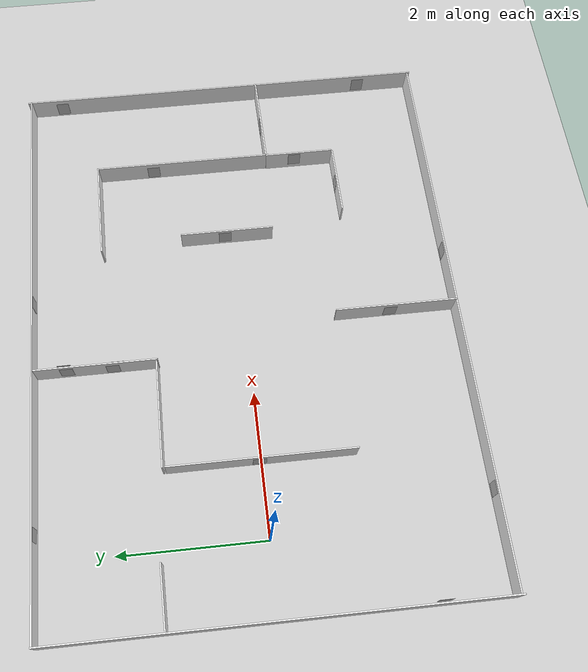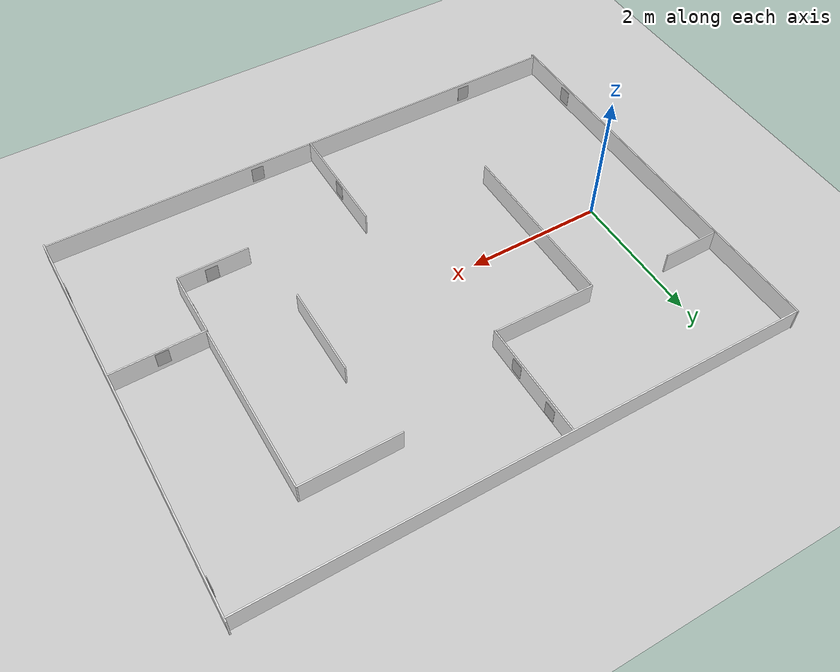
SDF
<sdf version="1.6">
 <world name="default">
  <model name="ground_plane">
   <static>1</static>
   <link name="link">
    <collision name="collision">
     <geometry><plane><normal>0 0 1</normal><size>100 100</size></plane></geometry>
     <surface><friction><ode><mu>100</mu><mu2>50</mu2></ode></friction></surface>
    </collision>
    <visual name="visual">
     <cast_shadows>0</cast_shadows>
     <geometry><plane><normal>0 0 1</normal><size>100 100</size></plane></geometry>
     <material>
      <script><uri>file://media/materials/scripts/gazebo.material</uri><name>Gazebo/Grey</name></script>
     </material>
    </visual>
   </link>
  </model>
  <model name="white_wall">
   <link name="link_0">
    <inertial>
     <mass>0.0175997</mass>
     <inertia>
      <ixx>0.00164239</ixx>
      <ixy>0</ixy>
      <ixz>0</ixz>
      <iyy>0.000179535</iyy>
      <iyz>0</iyz>
      <izz>0.00147044</izz>
     </inertia>
    </inertial>
    <visual name="visual">
     <geometry><box><size>0.02 6.00337 0.346159</size></box></geometry>
     <material>
      <lighting>1</lighting>
      <script><uri>file://media/materials/scripts/gazebo.material</uri><name>Gazebo/White</name></script>
      <ambient>1 1 1 1</ambient>
      <diffuse>1 1 1 1</diffuse>
      <specular>0.01 0.01 0.01 1</specular>
      <emissive>0 0 0 1</emissive>
      <shader type="vertex"><normal_map>__default__</normal_map></shader>
     </material>
    </visual>
    <collision name="collision">
     <geometry><box><size>0.050867 6.00337 0.346159</size></box></geometry>
     <surface>
      <friction>
       <ode><mu>1</mu><mu2>1</mu2><fdir1>0 0 0</fdir1><slip1>0</slip1><slip2>0</slip2></ode>
       <torsional>
        <coefficient>1</coefficient>
        <patch_radius>0</patch_radius>
        <surface_radius>0</surface_radius>
        <use_patch_radius>1</use_patch_radius>
        <ode><slip>0</slip></ode>
       </torsional>
      </friction>
      <bounce><restitution_coefficient>0</restitution_coefficient><threshold>1e+06</threshold></bounce>
      <contact>
       <collide_without_contact>0</collide_without_contact>
       <collide_without_contact_bitmask>1</collide_without_contact_bitmask>
       <collide_bitmask>1</collide_bitmask>
       <ode>
        <soft_cfm>0</soft_cfm>
        <soft_erp>0.2</soft_erp>
        <kp>1e+13</kp>
        <kd>1</kd>
        <max_vel>0.01</max_vel>
        <min_depth>0</min_depth>
       </ode>
       <bullet>
        <split_impulse>1</split_impulse>
        <split_impulse_penetration_threshold>-0.01</split_impulse_penetration_threshold>
        <soft_cfm>0</soft_cfm>
        <soft_erp>0.2</soft_erp>
        <kp>1e+13</kp>
        <kd>1</kd>
       </bullet>
      </contact>
     </surface>
    </collision>
   </link>
   <static>1</static>
   <pose>-1 0 0.182455 0 -0 0</pose>
  </model>
  <model name="white_wall_0">
   <link name="link_0">
    <inertial>
     <mass>0.0175997</mass>
     <inertia>
      <ixx>0.00164239</ixx>
      <ixy>0</ixy>
      <ixz>0</ixz>
      <iyy>0.000179535</iyy>
      <iyz>0</iyz>
      <izz>0.00147044</izz>
     </inertia>
    </inertial>
    <visual name="visual">
     <geometry><box><size>0.02 6.03871 0.346159</size></box></geometry>
     <material>
      <lighting>1</lighting>
      <script><uri>file://media/materials/scripts/gazebo.material</uri><name>Gazebo/White</name></script>
      <ambient>1 1 1 1</ambient>
      <diffuse>1 1 1 1</diffuse>
      <specular>0.01 0.01 0.01 1</specular>
      <emissive>0 0 0 1</emissive>
      <shader type="vertex"><normal_map>__default__</normal_map></shader>
     </material>
    </visual>
    <collision name="collision">
     <geometry><box><size>0.050867 6.03871 0.346159</size></box></geometry>
     <surface>
      <friction>
       <ode><mu>1</mu><mu2>1</mu2><fdir1>0 0 0</fdir1><slip1>0</slip1><slip2>0</slip2></ode>
       <torsional>
        <coefficient>1</coefficient>
        <patch_radius>0</patch_radius>
        <surface_radius>0</surface_radius>
        <use_patch_radius>1</use_patch_radius>
        <ode><slip>0</slip></ode>
       </torsional>
      </friction>
      <bounce><restitution_coefficient>0</restitution_coefficient><threshold>1e+06</threshold></bounce>
      <contact>
       <collide_without_contact>0</collide_without_contact>
       <collide_without_contact_bitmask>1</collide_without_contact_bitmask>
       <collide_bitmask>1</collide_bitmask>
       <ode>
        <soft_cfm>0</soft_cfm>
        <soft_erp>0.2</soft_erp>
        <kp>1e+13</kp>
        <kd>1</kd>
        <max_vel>0.01</max_vel>
        <min_depth>0</min_depth>
       </ode>
       <bullet>
        <split_impulse>1</split_impulse>
        <split_impulse_penetration_threshold>-0.01</split_impulse_penetration_threshold>
        <soft_cfm>0</soft_cfm>
        <soft_erp>0.2</soft_erp>
        <kp>1e+13</kp>
        <kd>1</kd>
       </bullet>
      </contact>
     </surface>
    </collision>
   </link>
   <static>1</static>
   <pose>7 0 0.172015 0 -0 0</pose>
  </model>
  <model name="white_wall_1">
   <link name="link_0">
    <inertial>
     <mass>0.0175997</mass>
     <inertia>
      <ixx>0.00164239</ixx>
      <ixy>0</ixy>
      <ixz>0</ixz>
      <iyy>0.000179535</iyy>
      <iyz>0</iyz>
      <izz>0.00147044</izz>
     </inertia>
    </inertial>
    <visual name="visual">
     <geometry><box><size>0.02 7.97967 0.346159</size></box></geometry>
     <material>
      <lighting>1</lighting>
      <script><uri>file://media/materials/scripts/gazebo.material</uri><name>Gazebo/White</name></script>
      <ambient>1 1 1 1</ambient>
      <diffuse>1 1 1 1</diffuse>
      <specular>0.01 0.01 0.01 1</specular>
      <emissive>0 0 0 1</emissive>
      <shader type="vertex"><normal_map>__default__</normal_map></shader>
     </material>
    </visual>
    <collision name="collision">
     <geometry><box><size>0.050867 7.97967 0.346159</size></box></geometry>
     <surface>
      <friction>
       <ode><mu>1</mu><mu2>1</mu2><fdir1>0 0 0</fdir1><slip1>0</slip1><slip2>0</slip2></ode>
       <torsional>
        <coefficient>1</coefficient>
        <patch_radius>0</patch_radius>
        <surface_radius>0</surface_radius>
        <use_patch_radius>1</use_patch_radius>
        <ode><slip>0</slip></ode>
       </torsional>
      </friction>
      <bounce><restitution_coefficient>0</restitution_coefficient><threshold>1e+06</threshold></bounce>
      <contact>
       <collide_without_contact>0</collide_without_contact>
       <collide_without_contact_bitmask>1</collide_without_contact_bitmask>
       <collide_bitmask>1</collide_bitmask>
       <ode>
        <soft_cfm>0</soft_cfm>
        <soft_erp>0.2</soft_erp>
        <kp>1e+13</kp>
        <kd>1</kd>
        <max_vel>0.01</max_vel>
        <min_depth>0</min_depth>
       </ode>
       <bullet>
        <split_impulse>1</split_impulse>
        <split_impulse_penetration_threshold>-0.01</split_impulse_penetration_threshold>
        <soft_cfm>0</soft_cfm>
        <soft_erp>0.2</soft_erp>
        <kp>1e+13</kp>
        <kd>1</kd>
       </bullet>
      </contact>
     </surface>
    </collision>
   </link>
   <static>1</static>
   <pose>2.99687 -2.9685 0.172001 0 -0 1.56756</pose>
  </model>
  <model name="white_wall_2">
   <link name="link_0">
    <inertial>
     <mass>0.0175997</mass>
     <inertia>
      <ixx>0.00164239</ixx>
      <ixy>0</ixy>
      <ixz>0</ixz>
      <iyy>0.000179535</iyy>
      <iyz>0</iyz>
      <izz>0.00147044</izz>
     </inertia>
    </inertial>
    <visual name="visual">
     <geometry><box><size>0.02 7.99042 0.346159</size></box></geometry>
     <material>
      <lighting>1</lighting>
      <script><uri>file://media/materials/scripts/gazebo.material</uri><name>Gazebo/White</name></script>
      <ambient>1 1 1 1</ambient>
      <diffuse>1 1 1 1</diffuse>
      <specular>0.01 0.01 0.01 1</specular>
      <emissive>0 0 0 1</emissive>
      <shader type="vertex"><normal_map>__default__</normal_map></shader>
     </material>
    </visual>
    <collision name="collision">
     <geometry><box><size>0.050867 7.99042 0.346159</size></box></geometry>
     <surface>
      <friction>
       <ode><mu>1</mu><mu2>1</mu2><fdir1>0 0 0</fdir1><slip1>0</slip1><slip2>0</slip2></ode>
       <torsional>
        <coefficient>1</coefficient>
        <patch_radius>0</patch_radius>
        <surface_radius>0</surface_radius>
        <use_patch_radius>1</use_patch_radius>
        <ode><slip>0</slip></ode>
       </torsional>
      </friction>
      <bounce><restitution_coefficient>0</restitution_coefficient><threshold>1e+06</threshold></bounce>
      <contact>
       <collide_without_contact>0</collide_without_contact>
       <collide_without_contact_bitmask>1</collide_without_contact_bitmask>
       <collide_bitmask>1</collide_bitmask>
       <ode>
        <soft_cfm>0</soft_cfm>
        <soft_erp>0.2</soft_erp>
        <kp>1e+13</kp>
        <kd>1</kd>
        <max_vel>0.01</max_vel>
        <min_depth>0</min_depth>
       </ode>
       <bullet>
        <split_impulse>1</split_impulse>
        <split_impulse_penetration_threshold>-0.01</split_impulse_penetration_threshold>
        <soft_cfm>0</soft_cfm>
        <soft_erp>0.2</soft_erp>
        <kp>1e+13</kp>
        <kd>1</kd>
       </bullet>
      </contact>
     </surface>
    </collision>
   </link>
   <static>1</static>
   <pose>3.0014 2.97559 0.180231 0 -0 1.56936</pose>
  </model>
  <model name="white_wall_3">
   <link name="link_0">
    <inertial>
     <mass>0.0175997</mass>
     <inertia>
      <ixx>0.00164239</ixx>
      <ixy>0</ixy>
      <ixz>0</ixz>
      <iyy>0.000179535</iyy>
      <iyz>0</iyz>
      <izz>0.00147044</izz>
     </inertia>
    </inertial>
    <visual name="visual">
     <geometry><box><size>0.02 2.54417 0.346159</size></box></geometry>
     <material>
      <lighting>1</lighting>
      <script><uri>file://media/materials/scripts/gazebo.material</uri><name>Gazebo/White</name></script>
      <ambient>1 1 1 1</ambient>
      <diffuse>1 1 1 1</diffuse>
      <specular>0.01 0.01 0.01 1</specular>
      <emissive>0 0 0 1</emissive>
      <shader type="vertex"><normal_map>__default__</normal_map></shader>
     </material>
    </visual>
    <collision name="collision">
     <geometry><box><size>0.050867 2.54417 0.346159</size></box></geometry>
     <surface>
      <friction>
       <ode><mu>1</mu><mu2>1</mu2><fdir1>0 0 0</fdir1><slip1>0</slip1><slip2>0</slip2></ode>
       <torsional>
        <coefficient>1</coefficient>
        <patch_radius>0</patch_radius>
        <surface_radius>0</surface_radius>
        <use_patch_radius>1</use_patch_radius>
        <ode><slip>0</slip></ode>
       </torsional>
      </friction>
      <bounce><restitution_coefficient>0</restitution_coefficient><threshold>1e+06</threshold></bounce>
      <contact>
       <collide_without_contact>0</collide_without_contact>
       <collide_without_contact_bitmask>1</collide_without_contact_bitmask>
       <collide_bitmask>1</collide_bitmask>
       <ode>
        <soft_cfm>0</soft_cfm>
        <soft_erp>0.2</soft_erp>
        <kp>1e+13</kp>
        <kd>1</kd>
        <max_vel>0.01</max_vel>
        <min_depth>0</min_depth>
       </ode>
       <bullet>
        <split_impulse>1</split_impulse>
        <split_impulse_penetration_threshold>-0.01</split_impulse_penetration_threshold>
        <soft_cfm>0</soft_cfm>
        <soft_erp>0.2</soft_erp>
        <kp>1e+13</kp>
        <kd>1</kd>
       </bullet>
      </contact>
     </surface>
    </collision>
   </link>
   <static>1</static>
   <pose>1.0154 -0.003535 0.168105 0 -0 0</pose>
  </model>
  <model name="white_wall_4">
   <link name="link_0">
    <inertial>
     <mass>0.0175997</mass>
     <inertia>
      <ixx>0.00164239</ixx>
      <ixy>0</ixy>
      <ixz>0</ixz>
      <iyy>0.000179535</iyy>
      <iyz>0</iyz>
      <izz>0.00147044</izz>
     </inertia>
    </inertial>
    <visual name="visual">
     <geometry><box><size>0.02 1.49109 0.346159</size></box></geometry>
     <material>
      <lighting>1</lighting>
      <script><uri>file://media/materials/scripts/gazebo.material</uri><name>Gazebo/White</name></script>
      <ambient>1 1 1 1</ambient>
      <diffuse>1 1 1 1</diffuse>
      <specular>0.01 0.01 0.01 1</specular>
      <emissive>0 0 0 1</emissive>
      <shader type="vertex"><normal_map>__default__</normal_map></shader>
     </material>
    </visual>
    <collision name="collision">
     <geometry><box><size>0.050867 1.49109 0.346159</size></box></geometry>
     <surface>
      <friction>
       <ode><mu>1</mu><mu2>1</mu2><fdir1>0 0 0</fdir1><slip1>0</slip1><slip2>0</slip2></ode>
       <torsional>
        <coefficient>1</coefficient>
        <patch_radius>0</patch_radius>
        <surface_radius>0</surface_radius>
        <use_patch_radius>1</use_patch_radius>
        <ode><slip>0</slip></ode>
       </torsional>
      </friction>
      <bounce><restitution_coefficient>0</restitution_coefficient><threshold>1e+06</threshold></bounce>
      <contact>
       <collide_without_contact>0</collide_without_contact>
       <collide_without_contact_bitmask>1</collide_without_contact_bitmask>
       <collide_bitmask>1</collide_bitmask>
       <ode>
        <soft_cfm>0</soft_cfm>
        <soft_erp>0.2</soft_erp>
        <kp>1e+13</kp>
        <kd>1</kd>
        <max_vel>0.01</max_vel>
        <min_depth>0</min_depth>
       </ode>
       <bullet>
        <split_impulse>1</split_impulse>
        <split_impulse_penetration_threshold>-0.01</split_impulse_penetration_threshold>
        <soft_cfm>0</soft_cfm>
        <soft_erp>0.2</soft_erp>
        <kp>1e+13</kp>
        <kd>1</kd>
       </bullet>
      </contact>
     </surface>
    </collision>
   </link>
   <static>1</static>
   <pose>1.75302 1.29235 0.163798 0 -0 1.56072</pose>
  </model>
  <model name="white_wall_5">
   <link name="link_0">
    <inertial>
     <mass>0.0175997</mass>
     <inertia>
      <ixx>0.00164239</ixx>
      <ixy>0</ixy>
      <ixz>0</ixz>
      <iyy>0.000179535</iyy>
      <iyz>0</iyz>
      <izz>0.00147044</izz>
     </inertia>
    </inertial>
    <visual name="visual">
     <geometry><box><size>0.02 1.71064 0.346159</size></box></geometry>
     <material>
      <lighting>1</lighting>
      <script><uri>file://media/materials/scripts/gazebo.material</uri><name>Gazebo/White</name></script>
      <ambient>1 1 1 1</ambient>
      <diffuse>1 1 1 1</diffuse>
      <specular>0.01 0.01 0.01 1</specular>
      <emissive>0 0 0 1</emissive>
      <shader type="vertex"><normal_map>__default__</normal_map></shader>
     </material>
    </visual>
    <collision name="collision">
     <geometry><box><size>0.050867 1.71064 0.346159</size></box></geometry>
     <surface>
      <friction>
       <ode><mu>1</mu><mu2>1</mu2><fdir1>0 0 0</fdir1><slip1>0</slip1><slip2>0</slip2></ode>
       <torsional>
        <coefficient>1</coefficient>
        <patch_radius>0</patch_radius>
        <surface_radius>0</surface_radius>
        <use_patch_radius>1</use_patch_radius>
        <ode><slip>0</slip></ode>
       </torsional>
      </friction>
      <bounce><restitution_coefficient>0</restitution_coefficient><threshold>1e+06</threshold></bounce>
      <contact>
       <collide_without_contact>0</collide_without_contact>
       <collide_without_contact_bitmask>1</collide_without_contact_bitmask>
       <collide_bitmask>1</collide_bitmask>
       <ode>
        <soft_cfm>0</soft_cfm>
        <soft_erp>0.2</soft_erp>
        <kp>1e+13</kp>
        <kd>1</kd>
        <max_vel>0.01</max_vel>
        <min_depth>0</min_depth>
       </ode>
       <bullet>
        <split_impulse>1</split_impulse>
        <split_impulse_penetration_threshold>-0.01</split_impulse_penetration_threshold>
        <soft_cfm>0</soft_cfm>
        <soft_erp>0.2</soft_erp>
        <kp>1e+13</kp>
        <kd>1</kd>
       </bullet>
      </contact>
     </surface>
    </collision>
   </link>
   <static>1</static>
   <pose>2.5176 2.12159 0.1646 0 -0 0</pose>
  </model>
  <model name="white_wall_6">
   <link name="link_0">
    <inertial>
     <mass>0.0175997</mass>
     <inertia>
      <ixx>0.00164239</ixx>
      <ixy>0</ixy>
      <ixz>0</ixz>
      <iyy>0.000179535</iyy>
      <iyz>0</iyz>
      <izz>0.00147044</izz>
     </inertia>
    </inertial>
    <visual name="visual">
     <geometry><box><size>0.02 1.71213 0.346159</size></box></geometry>
     <material>
      <lighting>1</lighting>
      <script><uri>file://media/materials/scripts/gazebo.material</uri><name>Gazebo/White</name></script>
      <ambient>1 1 1 1</ambient>
      <diffuse>1 1 1 1</diffuse>
      <specular>0.01 0.01 0.01 1</specular>
      <emissive>0 0 0 1</emissive>
      <shader type="vertex"><normal_map>__default__</normal_map></shader>
     </material>
    </visual>
    <collision name="collision">
     <geometry><box><size>0.050867 1.71213 0.346159</size></box></geometry>
     <surface>
      <friction>
       <ode><mu>1</mu><mu2>1</mu2><fdir1>0 0 0</fdir1><slip1>0</slip1><slip2>0</slip2></ode>
       <torsional>
        <coefficient>1</coefficient>
        <patch_radius>0</patch_radius>
        <surface_radius>0</surface_radius>
        <use_patch_radius>1</use_patch_radius>
        <ode><slip>0</slip></ode>
       </torsional>
      </friction>
      <bounce><restitution_coefficient>0</restitution_coefficient><threshold>1e+06</threshold></bounce>
      <contact>
       <collide_without_contact>0</collide_without_contact>
       <collide_without_contact_bitmask>1</collide_without_contact_bitmask>
       <collide_bitmask>1</collide_bitmask>
       <ode>
        <soft_cfm>0</soft_cfm>
        <soft_erp>0.2</soft_erp>
        <kp>1e+13</kp>
        <kd>1</kd>
        <max_vel>0.01</max_vel>
        <min_depth>0</min_depth>
       </ode>
       <bullet>
        <split_impulse>1</split_impulse>
        <split_impulse_penetration_threshold>-0.01</split_impulse_penetration_threshold>
        <soft_cfm>0</soft_cfm>
        <soft_erp>0.2</soft_erp>
        <kp>1e+13</kp>
        <kd>1</kd>
       </bullet>
      </contact>
     </surface>
    </collision>
   </link>
   <static>1</static>
   <pose>2.98665 -2.11414 0.18436 0 -0 0</pose>
  </model>
  <model name="white_wall_7">
   <link name="link_0">
    <inertial>
     <mass>0.0175997</mass>
     <inertia>
      <ixx>0.00164239</ixx>
      <ixy>0</ixy>
      <ixz>0</ixz>
      <iyy>0.000179535</iyy>
      <iyz>0</iyz>
      <izz>0.00147044</izz>
     </inertia>
    </inertial>
    <visual name="visual">
     <geometry><box><size>0.02 1.34173 0.346159</size></box></geometry>
     <material>
      <lighting>1</lighting>
      <script><uri>file://media/materials/scripts/gazebo.material</uri><name>Gazebo/White</name></script>
      <ambient>1 1 1 1</ambient>
      <diffuse>1 1 1 1</diffuse>
      <specular>0.01 0.01 0.01 1</specular>
      <emissive>0 0 0 1</emissive>
      <shader type="vertex"><normal_map>__default__</normal_map></shader>
     </material>
    </visual>
    <collision name="collision">
     <geometry><box><size>0.050867 1.34173 0.346159</size></box></geometry>
     <surface>
      <friction>
       <ode><mu>1</mu><mu2>1</mu2><fdir1>0 0 0</fdir1><slip1>0</slip1><slip2>0</slip2></ode>
       <torsional>
        <coefficient>1</coefficient>
        <patch_radius>0</patch_radius>
        <surface_radius>0</surface_radius>
        <use_patch_radius>1</use_patch_radius>
        <ode><slip>0</slip></ode>
       </torsional>
      </friction>
      <bounce><restitution_coefficient>0</restitution_coefficient><threshold>1e+06</threshold></bounce>
      <contact>
       <collide_without_contact>0</collide_without_contact>
       <collide_without_contact_bitmask>1</collide_without_contact_bitmask>
       <collide_bitmask>1</collide_bitmask>
       <ode>
        <soft_cfm>0</soft_cfm>
        <soft_erp>0.2</soft_erp>
        <kp>1e+13</kp>
        <kd>1</kd>
        <max_vel>0.01</max_vel>
        <min_depth>0</min_depth>
       </ode>
       <bullet>
        <split_impulse>1</split_impulse>
        <split_impulse_penetration_threshold>-0.01</split_impulse_penetration_threshold>
        <soft_cfm>0</soft_cfm>
        <soft_erp>0.2</soft_erp>
        <kp>1e+13</kp>
        <kd>1</kd>
       </bullet>
      </contact>
     </surface>
    </collision>
   </link>
   <static>1</static>
   <pose>4.41765 0.141955 0.155138 0 -0 0</pose>
  </model>
  <model name="white_wall_8">
   <link name="link_0">
    <inertial>
     <mass>0.0175997</mass>
     <inertia>
      <ixx>0.00164239</ixx>
      <ixy>0</ixy>
      <ixz>0</ixz>
      <iyy>0.000179535</iyy>
      <iyz>0</iyz>
      <izz>0.00147044</izz>
     </inertia>
    </inertial>
    <visual name="visual">
     <geometry><box><size>0.02 2.59171 0.346159</size></box></geometry>
     <material>
      <lighting>1</lighting>
      <script><uri>file://media/materials/scripts/gazebo.material</uri><name>Gazebo/White</name></script>
      <ambient>1 1 1 1</ambient>
      <diffuse>1 1 1 1</diffuse>
      <specular>0.01 0.01 0.01 1</specular>
      <emissive>0 0 0 1</emissive>
      <shader type="vertex"><normal_map>__default__</normal_map></shader>
     </material>
    </visual>
    <collision name="collision">
     <geometry><box><size>0.050867 2.59171 0.346159</size></box></geometry>
     <surface>
      <friction>
       <ode><mu>1</mu><mu2>1</mu2><fdir1>0 0 0</fdir1><slip1>0</slip1><slip2>0</slip2></ode>
       <torsional>
        <coefficient>1</coefficient>
        <patch_radius>0</patch_radius>
        <surface_radius>0</surface_radius>
        <use_patch_radius>1</use_patch_radius>
        <ode><slip>0</slip></ode>
       </torsional>
      </friction>
      <bounce><restitution_coefficient>0</restitution_coefficient><threshold>1e+06</threshold></bounce>
      <contact>
       <collide_without_contact>0</collide_without_contact>
       <collide_without_contact_bitmask>1</collide_without_contact_bitmask>
       <collide_bitmask>1</collide_bitmask>
       <ode>
        <soft_cfm>0</soft_cfm>
        <soft_erp>0.2</soft_erp>
        <kp>1e+13</kp>
        <kd>1</kd>
        <max_vel>0.01</max_vel>
        <min_depth>0</min_depth>
       </ode>
       <bullet>
        <split_impulse>1</split_impulse>
        <split_impulse_penetration_threshold>-0.01</split_impulse_penetration_threshold>
        <soft_cfm>0</soft_cfm>
        <soft_erp>0.2</soft_erp>
        <kp>1e+13</kp>
        <kd>1</kd>
       </bullet>
      </contact>
     </surface>
    </collision>
   </link>
   <static>1</static>
   <pose>5.6728 0.69269 0.159233 0 -0 0</pose>
  </model>
  <model name="white_wall_9">
   <link name="link_0">
    <inertial>
     <mass>0.0175997</mass>
     <inertia>
      <ixx>0.00164239</ixx>
      <ixy>0</ixy>
      <ixz>0</ixz>
      <iyy>0.000179535</iyy>
      <iyz>0</iyz>
      <izz>0.00147044</izz>
     </inertia>
    </inertial>
    <visual name="visual">
     <geometry><box><size>0.02 1 0.346159</size></box></geometry>
     <material>
      <lighting>1</lighting>
      <script><uri>file://media/materials/scripts/gazebo.material</uri><name>Gazebo/White</name></script>
      <ambient>1 1 1 1</ambient>
      <diffuse>1 1 1 1</diffuse>
      <specular>0.01 0.01 0.01 1</specular>
      <emissive>0 0 0 1</emissive>
      <shader type="vertex"><normal_map>__default__</normal_map></shader>
     </material>
    </visual>
    <collision name="collision">
     <geometry><box><size>0.050867 1 0.346159</size></box></geometry>
     <surface>
      <friction>
       <ode><mu>1</mu><mu2>1</mu2><fdir1>0 0 0</fdir1><slip1>0</slip1><slip2>0</slip2></ode>
       <torsional>
        <coefficient>1</coefficient>
        <patch_radius>0</patch_radius>
        <surface_radius>0</surface_radius>
        <use_patch_radius>1</use_patch_radius>
        <ode><slip>0</slip></ode>
       </torsional>
      </friction>
      <bounce><restitution_coefficient>0</restitution_coefficient><threshold>1e+06</threshold></bounce>
      <contact>
       <collide_without_contact>0</collide_without_contact>
       <collide_without_contact_bitmask>1</collide_without_contact_bitmask>
       <collide_bitmask>1</collide_bitmask>
       <ode>
        <soft_cfm>0</soft_cfm>
        <soft_erp>0.2</soft_erp>
        <kp>1e+13</kp>
        <kd>1</kd>
        <max_vel>0.01</max_vel>
        <min_depth>0</min_depth>
       </ode>
       <bullet>
        <split_impulse>1</split_impulse>
        <split_impulse_penetration_threshold>-0.01</split_impulse_penetration_threshold>
        <soft_cfm>0</soft_cfm>
        <soft_erp>0.2</soft_erp>
        <kp>1e+13</kp>
        <kd>1</kd>
       </bullet>
      </contact>
     </surface>
    </collision>
   </link>
   <static>1</static>
   <pose>5.66363 -1.0734 0.160686 0 -0 0</pose>
  </model>
  <model name="white_wall_10">
   <link name="link_0">
    <inertial>
     <mass>0.0175997</mass>
     <inertia>
      <ixx>0.00164239</ixx>
      <ixy>0</ixy>
      <ixz>0</ixz>
      <iyy>0.000179535</iyy>
      <iyz>0</iyz>
      <izz>0.00147044</izz>
     </inertia>
    </inertial>
    <visual name="visual">
     <geometry><box><size>0.02 1.04107 0.346159</size></box></geometry>
     <material>
      <lighting>1</lighting>
      <script><uri>file://media/materials/scripts/gazebo.material</uri><name>Gazebo/White</name></script>
      <ambient>1 1 1 1</ambient>
      <diffuse>1 1 1 1</diffuse>
      <specular>0.01 0.01 0.01 1</specular>
      <emissive>0 0 0 1</emissive>
      <shader type="vertex"><normal_map>__default__</normal_map></shader>
     </material>
    </visual>
    <collision name="collision">
     <geometry><box><size>0.050867 1.04107 0.346159</size></box></geometry>
     <surface>
      <friction>
       <ode><mu>1</mu><mu2>1</mu2><fdir1>0 0 0</fdir1><slip1>0</slip1><slip2>0</slip2></ode>
       <torsional>
        <coefficient>1</coefficient>
        <patch_radius>0</patch_radius>
        <surface_radius>0</surface_radius>
        <use_patch_radius>1</use_patch_radius>
        <ode><slip>0</slip></ode>
       </torsional>
      </friction>
      <bounce><restitution_coefficient>0</restitution_coefficient><threshold>1e+06</threshold></bounce>
      <contact>
       <collide_without_contact>0</collide_without_contact>
       <collide_without_contact_bitmask>1</collide_without_contact_bitmask>
       <collide_bitmask>1</collide_bitmask>
       <ode>
        <soft_cfm>0</soft_cfm>
        <soft_erp>0.2</soft_erp>
        <kp>1e+13</kp>
        <kd>1</kd>
        <max_vel>0.01</max_vel>
        <min_depth>0</min_depth>
       </ode>
       <bullet>
        <split_impulse>1</split_impulse>
        <split_impulse_penetration_threshold>-0.01</split_impulse_penetration_threshold>
        <soft_cfm>0</soft_cfm>
        <soft_erp>0.2</soft_erp>
        <kp>1e+13</kp>
        <kd>1</kd>
       </bullet>
      </contact>
     </surface>
    </collision>
   </link>
   <static>1</static>
   <pose>5.14388 -1.59035 0.145591 0 -0 1.57823</pose>
  </model>
  <model name="white_wall_11">
   <link name="link_0">
    <inertial>
     <mass>0.0175997</mass>
     <inertia>
      <ixx>0.00164239</ixx>
      <ixy>0</ixy>
      <ixz>0</ixz>
      <iyy>0.000179535</iyy>
      <iyz>0</iyz>
      <izz>0.00147044</izz>
     </inertia>
    </inertial>
    <visual name="visual">
     <geometry><box><size>0.02 1.32966 0.346159</size></box></geometry>
     <material>
      <lighting>1</lighting>
      <script><uri>file://media/materials/scripts/gazebo.material</uri><name>Gazebo/White</name></script>
      <ambient>1 1 1 1</ambient>
      <diffuse>1 1 1 1</diffuse>
      <specular>0.01 0.01 0.01 1</specular>
      <emissive>0 0 0 1</emissive>
      <shader type="vertex"><normal_map>__default__</normal_map></shader>
     </material>
    </visual>
    <collision name="collision">
     <geometry><box><size>0.050867 1.32966 0.346159</size></box></geometry>
     <surface>
      <friction>
       <ode><mu>1</mu><mu2>1</mu2><fdir1>0 0 0</fdir1><slip1>0</slip1><slip2>0</slip2></ode>
       <torsional>
        <coefficient>1</coefficient>
        <patch_radius>0</patch_radius>
        <surface_radius>0</surface_radius>
        <use_patch_radius>1</use_patch_radius>
        <ode><slip>0</slip></ode>
       </torsional>
      </friction>
      <bounce><restitution_coefficient>0</restitution_coefficient><threshold>1e+06</threshold></bounce>
      <contact>
       <collide_without_contact>0</collide_without_contact>
       <collide_without_contact_bitmask>1</collide_without_contact_bitmask>
       <collide_bitmask>1</collide_bitmask>
       <ode>
        <soft_cfm>0</soft_cfm>
        <soft_erp>0.2</soft_erp>
        <kp>1e+13</kp>
        <kd>1</kd>
        <max_vel>0.01</max_vel>
        <min_depth>0</min_depth>
       </ode>
       <bullet>
        <split_impulse>1</split_impulse>
        <split_impulse_penetration_threshold>-0.01</split_impulse_penetration_threshold>
        <soft_cfm>0</soft_cfm>
        <soft_erp>0.2</soft_erp>
        <kp>1e+13</kp>
        <kd>1</kd>
       </bullet>
      </contact>
     </surface>
    </collision>
   </link>
   <static>1</static>
   <pose>6.32907 -0.563289 0.17597 0 -0 1.58346</pose>
  </model>
  <model name="white_wall_12">
   <link name="link_0">
    <inertial>
     <mass>0.0175997</mass>
     <inertia>
      <ixx>0.00164239</ixx>
      <ixy>0</ixy>
      <ixz>0</ixz>
      <iyy>0.000179535</iyy>
      <iyz>0</iyz>
      <izz>0.00147044</izz>
     </inertia>
    </inertial>
    <visual name="visual">
     <geometry><box><size>0.02 1.42207 0.346159</size></box></geometry>
     <material>
      <lighting>1</lighting>
      <script><uri>file://media/materials/scripts/gazebo.material</uri><name>Gazebo/White</name></script>
      <ambient>1 1 1 1</ambient>
      <diffuse>1 1 1 1</diffuse>
      <specular>0.01 0.01 0.01 1</specular>
      <emissive>0 0 0 1</emissive>
      <shader type="vertex"><normal_map>__default__</normal_map></shader>
     </material>
    </visual>
    <collision name="collision">
     <geometry><box><size>0.050867 1.42207 0.346159</size></box></geometry>
     <surface>
      <friction>
       <ode><mu>1</mu><mu2>1</mu2><fdir1>0 0 0</fdir1><slip1>0</slip1><slip2>0</slip2></ode>
       <torsional>
        <coefficient>1</coefficient>
        <patch_radius>0</patch_radius>
        <surface_radius>0</surface_radius>
        <use_patch_radius>1</use_patch_radius>
        <ode><slip>0</slip></ode>
       </torsional>
      </friction>
      <bounce><restitution_coefficient>0</restitution_coefficient><threshold>1e+06</threshold></bounce>
      <contact>
       <collide_without_contact>0</collide_without_contact>
       <collide_without_contact_bitmask>1</collide_without_contact_bitmask>
       <collide_bitmask>1</collide_bitmask>
       <ode>
        <soft_cfm>0</soft_cfm>
        <soft_erp>0.2</soft_erp>
        <kp>1e+13</kp>
        <kd>1</kd>
        <max_vel>0.01</max_vel>
        <min_depth>0</min_depth>
       </ode>
       <bullet>
        <split_impulse>1</split_impulse>
        <split_impulse_penetration_threshold>-0.01</split_impulse_penetration_threshold>
        <soft_cfm>0</soft_cfm>
        <soft_erp>0.2</soft_erp>
        <kp>1e+13</kp>
        <kd>1</kd>
       </bullet>
      </contact>
     </surface>
    </collision>
   </link>
   <static>1</static>
   <pose>4.96647 1.97311 0.163518 0 -0 1.57548</pose>
  </model>
  <model name="white_wall_13">
   <link name="link_0">
    <inertial>
     <mass>0.0175997</mass>
     <inertia>
      <ixx>0.00164239</ixx>
      <ixy>0</ixy>
      <ixz>0</ixz>
      <iyy>0.000179535</iyy>
      <iyz>0</iyz>
      <izz>0.00147044</izz>
     </inertia>
    </inertial>
    <visual name="visual">
     <geometry><box><size>0.02 0.830901 0.346159</size></box></geometry>
     <material>
      <lighting>1</lighting>
      <script><uri>file://media/materials/scripts/gazebo.material</uri><name>Gazebo/White</name></script>
      <ambient>1 1 1 1</ambient>
      <diffuse>1 1 1 1</diffuse>
      <specular>0.01 0.01 0.01 1</specular>
      <emissive>0 0 0 1</emissive>
      <shader type="vertex"><normal_map>__default__</normal_map></shader>
     </material>
    </visual>
    <collision name="collision">
     <geometry><box><size>0.050867 0.830901 0.346159</size></box></geometry>
     <surface>
      <friction>
       <ode><mu>1</mu><mu2>1</mu2><fdir1>0 0 0</fdir1><slip1>0</slip1><slip2>0</slip2></ode>
       <torsional>
        <coefficient>1</coefficient>
        <patch_radius>0</patch_radius>
        <surface_radius>0</surface_radius>
        <use_patch_radius>1</use_patch_radius>
        <ode><slip>0</slip></ode>
       </torsional>
      </friction>
      <bounce><restitution_coefficient>0</restitution_coefficient><threshold>1e+06</threshold></bounce>
      <contact>
       <collide_without_contact>0</collide_without_contact>
       <collide_without_contact_bitmask>1</collide_without_contact_bitmask>
       <collide_bitmask>1</collide_bitmask>
       <ode>
        <soft_cfm>0</soft_cfm>
        <soft_erp>0.2</soft_erp>
        <kp>1e+13</kp>
        <kd>1</kd>
        <max_vel>0.01</max_vel>
        <min_depth>0</min_depth>
       </ode>
       <bullet>
        <split_impulse>1</split_impulse>
        <split_impulse_penetration_threshold>-0.01</split_impulse_penetration_threshold>
        <soft_cfm>0</soft_cfm>
        <soft_erp>0.2</soft_erp>
        <kp>1e+13</kp>
        <kd>1</kd>
       </bullet>
      </contact>
     </surface>
    </collision>
   </link>
   <static>1</static>
   <pose>-0.586289 1.39241 0.170878 0 -0 1.57918</pose>
  </model>
  <model name="sign_right1">
   <static>1</static>
   <link name="link">
    <pose>0 0 1.4 0 -0 0</pose>
    <visual name="visual">
     <cast_shadows>0</cast_shadows>
     <geometry><box><size>0.003668 0.181404 0.2404</size></box></geometry>
     <material>
      <script>
       <uri>model://sign_right1/materials/scripts</uri>
       <uri>model://sign_right1/materials/textures</uri>
       <name>right1</name>
      </script>
     </material>
    </visual>
   </link>
   <pose>0.998453 0.028519 -1.21562 0 -0 0</pose>
  </model>
  <model name="sign_stop">
   <static>1</static>
   <link name="link">
    <pose>0 0 1.4 0 -0 0</pose>
    <visual name="visual">
     <cast_shadows>0</cast_shadows>
     <geometry><box><size>0.003668 0.181404 0.2404</size></box></geometry>
     <material>
      <script>
       <uri>model://sign_stop/materials/scripts</uri>
       <uri>model://sign_stop/materials/textures</uri>
       <name>stop</name>
      </script>
     </material>
    </visual>
   </link>
   <pose>2.50443 2.52462 -1.22321 0 -0 0</pose>
  </model>
  <model name="sign_do_not_enter">
   <static>1</static>
   <link name="link">
    <pose>0 0 1.4 0 -0 0</pose>
    <visual name="visual">
     <cast_shadows>0</cast_shadows>
     <geometry><box><size>0.003668 0.181404 0.2404</size></box></geometry>
     <material>
      <script>
       <uri>model://sign_do_not_enter/materials/scripts</uri>
       <uri>model://sign_do_not_enter/materials/textures</uri>
       <name>do_not_enter</name>
      </script>
     </material>
    </visual>
   </link>
   <pose>0.333516 2.96957 -1.19186 0 0 -1.58148</pose>
  </model>
  <model name="sign_stop_clone">
   <static>1</static>
   <link name="link">
    <pose>0 0 1.4 0 -0 0</pose>
    <visual name="visual">
     <cast_shadows>0</cast_shadows>
     <geometry><box><size>0.003668 0.181404 0.2404</size></box></geometry>
     <material>
      <script>
       <uri>model://sign_stop/materials/scripts</uri>
       <uri>model://sign_stop/materials/textures</uri>
       <name>stop</name>
      </script>
     </material>
    </visual>
   </link>
   <pose>2.49443 1.89098 -1.22321 0 -0 0</pose>
  </model>
  <model name="sign_left2">
   <static>1</static>
   <link name="link">
    <pose>0 0 1.4 0 -0 0</pose>
    <visual name="visual">
     <cast_shadows>0</cast_shadows>
     <geometry><box><size>0.003668 0.181404 0.2404</size></box></geometry>
     <material>
      <script>
       <uri>model://sign_left2/materials/scripts</uri>
       <uri>model://sign_left2/materials/textures</uri>
       <name>left2</name>
      </script>
     </material>
    </visual>
   </link>
   <pose>0.333171 -2.94576 -1.22555 0 0 -1.59282</pose>
  </model>
  <model name="sign_left2_0">
   <static>1</static>
   <link name="link">
    <pose>0 0 1.4 0 -0 0</pose>
    <visual name="visual">
     <cast_shadows>0</cast_shadows>
     <geometry><box><size>0.003668 0.181404 0.2404</size></box></geometry>
     <material>
      <script>
       <uri>model://sign_left2/materials/scripts</uri>
       <uri>model://sign_left2/materials/textures</uri>
       <name>left2</name>
      </script>
     </material>
    </visual>
   </link>
   <pose>-0.963586 -2.04797 -1.18903 0 -0 0</pose>
  </model>
  <model name="sign_left3">
   <static>1</static>
   <link name="link">
    <pose>0 0 1.4 0 -0 0</pose>
    <visual name="visual">
     <cast_shadows>0</cast_shadows>
     <geometry><box><size>0.003668 0.181404 0.2404</size></box></geometry>
     <material>
      <script>
       <uri>model://sign_left3/materials/scripts</uri>
       <uri>model://sign_left3/materials/textures</uri>
       <name>left3</name>
      </script>
     </material>
    </visual>
   </link>
   <pose>2.96287 -2.03428 -1.19831 0 -0 0</pose>
  </model>
  <model name="sign_right1_0">
   <static>1</static>
   <link name="link">
    <pose>0 0 1.4 0 -0 0</pose>
    <visual name="visual">
     <cast_shadows>0</cast_shadows>
     <geometry><box><size>0.003668 0.181404 0.2404</size></box></geometry>
     <material>
      <script>
       <uri>model://sign_right1/materials/scripts</uri>
       <uri>model://sign_right1/materials/textures</uri>
       <name>right1</name>
      </script>
     </material>
    </visual>
   </link>
   <pose>4.40826 0.169602 -1.24039 0 -0 0</pose>
  </model>
  <model name="sign_right2">
   <static>1</static>
   <link name="link">
    <pose>0 0 1.4 0 -0 0</pose>
    <visual name="visual">
     <cast_shadows>0</cast_shadows>
     <geometry><box><size>0.003668 0.181404 0.2404</size></box></geometry>
     <material>
      <script>
       <uri>model://sign_right2/materials/scripts</uri>
       <uri>model://sign_right2/materials/textures</uri>
       <name>right2</name>
      </script>
     </material>
    </visual>
   </link>
   <pose>5.64714 -1.00513 -1.20838 0 -0 0</pose>
  </model>
  <model name="sign_right3">
   <static>1</static>
   <link name="link">
    <pose>0 0 1.4 0 -0 0</pose>
    <visual name="visual">
     <cast_shadows>0</cast_shadows>
     <geometry><box><size>0.003668 0.181404 0.2404</size></box></geometry>
     <material>
      <script>
       <uri>model://sign_right3/materials/scripts</uri>
       <uri>model://sign_right3/materials/textures</uri>
       <name>right3</name>
      </script>
     </material>
    </visual>
   </link>
   <pose>5.65557 1.14874 -1.25643 0 -0 0</pose>
  </model>
  <model name="sign_left1">
   <static>1</static>
   <link name="link">
    <pose>0 0 1.4 0 -0 0</pose>
    <visual name="visual">
     <cast_shadows>0</cast_shadows>
     <geometry><box><size>0.003668 0.181404 0.2404</size></box></geometry>
     <material>
      <script>
       <uri>model://sign_left1/materials/scripts</uri>
       <uri>model://sign_left1/materials/textures</uri>
       <name>left1</name>
      </script>
     </material>
    </visual>
   </link>
   <pose>6.97642 -2.18843 -1.22828 0 -0 0</pose>
  </model>
  <model name="sign_stop_0">
   <static>1</static>
   <link name="link">
    <pose>0 0 1.4 0 -0 0</pose>
    <visual name="visual">
     <cast_shadows>0</cast_shadows>
     <geometry><box><size>0.003668 0.181404 0.2404</size></box></geometry>
     <material>
      <script>
       <uri>model://sign_stop/materials/scripts</uri>
       <uri>model://sign_stop/materials/textures</uri>
       <name>stop</name>
      </script>
     </material>
    </visual>
   </link>
   <pose>6.2879 -0.549477 -1.19358 0 0 -1.56393</pose>
  </model>
  <model name="sign_target">
   <static>1</static>
   <link name="link">
    <pose>0 0 1.4 0 -0 0</pose>
    <visual name="visual">
     <cast_shadows>0</cast_shadows>
     <geometry><box><size>0.003668 0.181404 0.2404</size></box></geometry>
     <material>
      <script>
       <uri>model://sign_target/materials/scripts</uri>
       <uri>model://sign_target/materials/textures</uri>
       <name>target</name>
      </script>
     </material>
    </visual>
   </link>
   <pose>6.31998 -0.575162 -1.23035 0 -0 1.59587</pose>
  </model>
  <model name="sign_do_not_enter_0">
   <static>1</static>
   <link name="link">
    <pose>0 0 1.4 0 -0 0</pose>
    <visual name="visual">
     <cast_shadows>0</cast_shadows>
     <geometry><box><size>0.003668 0.181404 0.2404</size></box></geometry>
     <material>
      <script>
       <uri>model://sign_do_not_enter/materials/scripts</uri>
       <uri>model://sign_do_not_enter/materials/textures</uri>
       <name>do_not_enter</name>
      </script>
     </material>
    </visual>
   </link>
   <pose>6.97409 2.5034 -1.23086 0 -0 0</pose>
  </model>
  <model name="sign_do_not_enter_1">
   <static>1</static>
   <link name="link">
    <pose>0 0 1.4 0 -0 0</pose>
    <visual name="visual">
     <cast_shadows>0</cast_shadows>
     <geometry><box><size>0.003668 0.181404 0.2404</size></box></geometry>
     <material>
      <script>
       <uri>model://sign_do_not_enter/materials/scripts</uri>
       <uri>model://sign_do_not_enter/materials/textures</uri>
       <name>do_not_enter</name>
      </script>
     </material>
    </visual>
   </link>
   <pose>3.56293 2.96455 -1.20001 0 -0 1.58</pose>
  </model>
  <model name="sign_left1_0">
   <static>1</static>
   <link name="link">
    <pose>0 0 1.4 0 -0 0</pose>
    <visual name="visual">
     <cast_shadows>0</cast_shadows>
     <geometry><box><size>0.003668 0.181404 0.2404</size></box></geometry>
     <material>
      <script>
       <uri>model://sign_left1/materials/scripts</uri>
       <uri>model://sign_left1/materials/textures</uri>
       <name>left1</name>
      </script>
     </material>
    </visual>
   </link>
   <pose>2.99724 -2.04329 -1.21523 0 -0 0</pose>
  </model>
  <model name="sign_left3_0">
   <static>1</static>
   <link name="link">
    <pose>0 0 1.4 0 -0 0</pose>
    <visual name="visual">
     <cast_shadows>0</cast_shadows>
     <geometry><box><size>0.003668 0.181404 0.2404</size></box></geometry>
     <material>
      <script>
       <uri>model://sign_left3/materials/scripts</uri>
       <uri>model://sign_left3/materials/textures</uri>
       <name>left3</name>
      </script>
     </material>
    </visual>
   </link>
   <pose>2.55619 2.54953 -1.21134 0 -0 0</pose>
  </model>
  <model name="sign_left3_0_clone">
   <static>1</static>
   <link name="link">
    <pose>0 0 1.4 0 -0 0</pose>
    <visual name="visual">
     <cast_shadows>0</cast_shadows>
     <geometry><box><size>0.003668 0.181404 0.2404</size></box></geometry>
     <material>
      <script>
       <uri>model://sign_left3/materials/scripts</uri>
       <uri>model://sign_left3/materials/textures</uri>
       <name>left3</name>
      </script>
     </material>
    </visual>
   </link>
   <pose>2.54079 1.81751 -1.21134 0 -0 0</pose>
  </model>
  <model name="sign_left2_1">
   <static>1</static>
   <link name="link">
    <pose>0 0 1.4 0 -0 0</pose>
    <visual name="visual">
     <cast_shadows>0</cast_shadows>
     <geometry><box><size>0.003668 0.181404 0.2404</size></box></geometry>
     <material>
      <script>
       <uri>model://sign_left2/materials/scripts</uri>
       <uri>model://sign_left2/materials/textures</uri>
       <name>left2</name>
      </script>
     </material>
    </visual>
   </link>
   <pose>3.85534 -2.95998 -1.2369 0 -0 1.55336</pose>
  </model>
  <model name="sign_right1_1">
   <static>1</static>
   <link name="link">
    <pose>0 0 1.4 0 -0 0</pose>
    <visual name="visual">
     <cast_shadows>0</cast_shadows>
     <geometry><box><size>0.003668 0.181404 0.2404</size></box></geometry>
     <material>
      <script>
       <uri>model://sign_right1/materials/scripts</uri>
       <uri>model://sign_right1/materials/textures</uri>
       <name>right1</name>
      </script>
     </material>
    </visual>
   </link>
   <pose>5.18289 -1.57799 -1.27122 0 0 -1.58122</pose>
  </model>
 </world>
</sdf>
